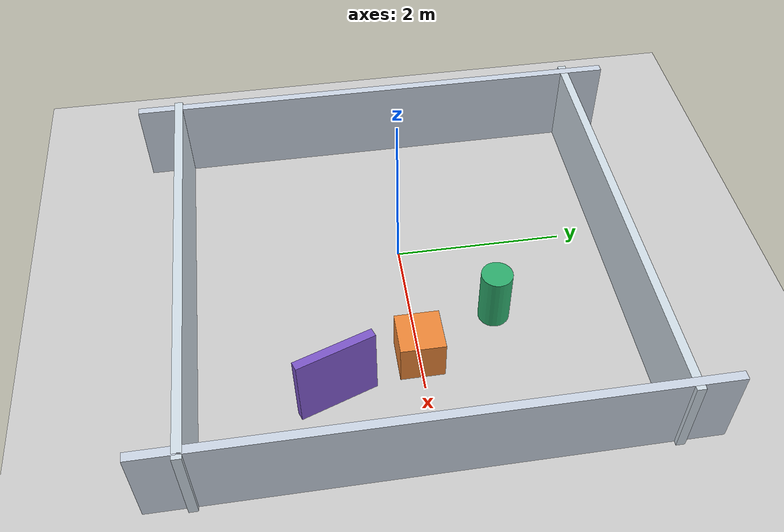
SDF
<?xml version="1.0" ?>
<sdf version="1.6">
  <world name="lab6_obstacles">
    <include>
      <uri>model://sun</uri>
    </include>

    <include>
      <uri>model://ground_plane</uri>
    </include>

    <scene>
      <ambient>0.45 0.45 0.45 1</ambient>
      <background>0.92 0.95 1.00 1</background>
      <shadows>true</shadows>
    </scene>

    <physics type="ode">
      <max_step_size>0.001</max_step_size>
      <real_time_factor>1</real_time_factor>
      <real_time_update_rate>1000</real_time_update_rate>
    </physics>

    <model name="front_wall">
      <static>true</static>
      <pose>3.0 0.0 0.5 0 0 0</pose>
      <link name="link">
        <collision name="collision">
          <geometry>
            <box>
              <size>0.10 6.00 1.00</size>
            </box>
          </geometry>
        </collision>
        <visual name="visual">
          <geometry>
            <box>
              <size>0.10 6.00 1.00</size>
            </box>
          </geometry>
          <material>
            <ambient>0.80 0.84 0.90 1</ambient>
            <diffuse>0.80 0.84 0.90 1</diffuse>
          </material>
        </visual>
      </link>
    </model>

    <model name="rear_wall">
      <static>true</static>
      <pose>-2.0 0.0 0.5 0 0 0</pose>
      <link name="link">
        <collision name="collision">
          <geometry>
            <box>
              <size>0.10 6.00 1.00</size>
            </box>
          </geometry>
        </collision>
        <visual name="visual">
          <geometry>
            <box>
              <size>0.10 6.00 1.00</size>
            </box>
          </geometry>
          <material>
            <ambient>0.80 0.84 0.90 1</ambient>
            <diffuse>0.80 0.84 0.90 1</diffuse>
          </material>
        </visual>
      </link>
    </model>

    <model name="left_wall">
      <static>true</static>
      <pose>0.5 2.5 0.5 0 0 0</pose>
      <link name="link">
        <collision name="collision">
          <geometry>
            <box>
              <size>5.20 0.10 1.00</size>
            </box>
          </geometry>
        </collision>
        <visual name="visual">
          <geometry>
            <box>
              <size>5.20 0.10 1.00</size>
            </box>
          </geometry>
          <material>
            <ambient>0.82 0.87 0.91 1</ambient>
            <diffuse>0.82 0.87 0.91 1</diffuse>
          </material>
        </visual>
      </link>
    </model>

    <model name="right_wall">
      <static>true</static>
      <pose>0.5 -2.5 0.5 0 0 0</pose>
      <link name="link">
        <collision name="collision">
          <geometry>
            <box>
              <size>5.20 0.10 1.00</size>
            </box>
          </geometry>
        </collision>
        <visual name="visual">
          <geometry>
            <box>
              <size>5.20 0.10 1.00</size>
            </box>
          </geometry>
          <material>
            <ambient>0.82 0.87 0.91 1</ambient>
            <diffuse>0.82 0.87 0.91 1</diffuse>
          </material>
        </visual>
      </link>
    </model>

    <model name="orange_box">
      <static>true</static>
      <pose>1.6 0.0 0.25 0 0 0</pose>
      <link name="link">
        <collision name="collision">
          <geometry>
            <box>
              <size>0.50 0.50 0.50</size>
            </box>
          </geometry>
        </collision>
        <visual name="visual">
          <geometry>
            <box>
              <size>0.50 0.50 0.50</size>
            </box>
          </geometry>
          <material>
            <ambient>0.93 0.53 0.22 1</ambient>
            <diffuse>0.93 0.53 0.22 1</diffuse>
          </material>
        </visual>
      </link>
    </model>

    <model name="green_cylinder">
      <static>true</static>
      <pose>1.1 0.95 0.35 0 0 0</pose>
      <link name="link">
        <collision name="collision">
          <geometry>
            <cylinder>
              <radius>0.18</radius>
              <length>0.70</length>
            </cylinder>
          </geometry>
        </collision>
        <visual name="visual">
          <geometry>
            <cylinder>
              <radius>0.18</radius>
              <length>0.70</length>
            </cylinder>
          </geometry>
          <material>
            <ambient>0.18 0.68 0.43 1</ambient>
            <diffuse>0.18 0.68 0.43 1</diffuse>
          </material>
        </visual>
      </link>
    </model>

    <model name="purple_panel">
      <static>true</static>
      <pose>2.0 -0.95 0.45 0 0 0.35</pose>
      <link name="link">
        <collision name="collision">
          <geometry>
            <box>
              <size>0.10 0.90 0.90</size>
            </box>
          </geometry>
        </collision>
        <visual name="visual">
          <geometry>
            <box>
              <size>0.10 0.90 0.90</size>
            </box>
          </geometry>
          <material>
            <ambient>0.49 0.34 0.79 1</ambient>
            <diffuse>0.49 0.34 0.79 1</diffuse>
          </material>
        </visual>
      </link>
    </model>
  </world>
</sdf>
